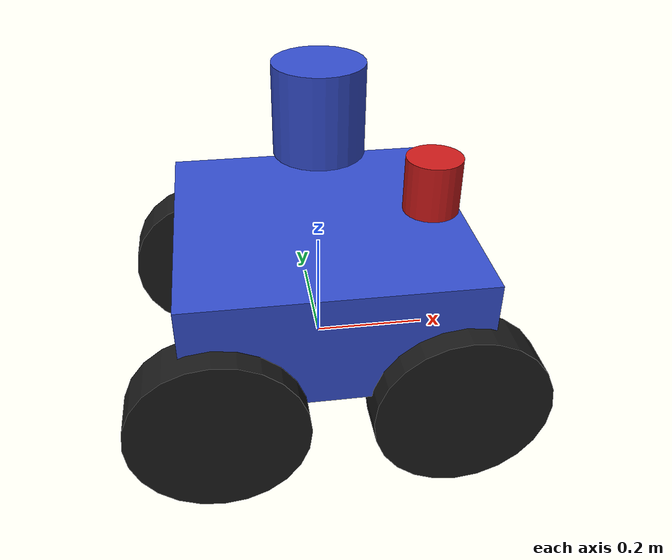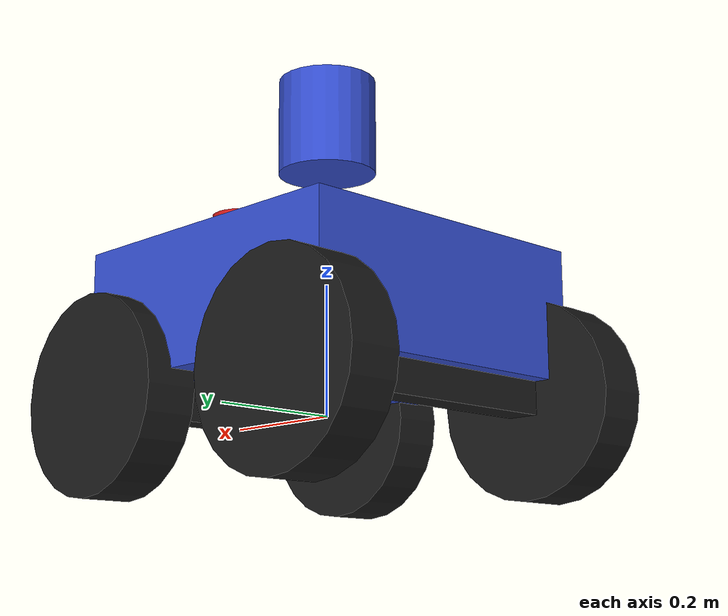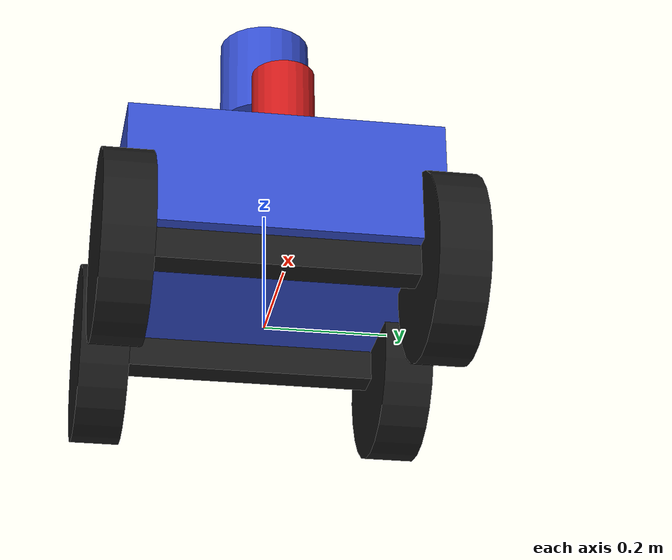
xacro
<?xml version="1.0"?>
<robot xmlns:xacro="http://www.ros.org/wiki/xacro" name="diy_ackermann">

  <!-- PARAMETERS - Easily modifiable values -->

  <!-- Robot dimensions -->
  <xacro:property name="chassis_length" value="0.5"/>
  <xacro:property name="chassis_width" value="0.5"/>
  <xacro:property name="chassis_height" value="0.2"/>
  <xacro:property name="chassis_mass" value="20.0"/>

  <!-- Wheel properties -->
  <xacro:property name="wheel_radius" value="0.15"/>
  <xacro:property name="wheel_width" value="0.08"/>
  <xacro:property name="wheel_mass" value="1.5"/>

  <!-- Axle dimensions -->
  <xacro:property name="wheelbase" value="0.4"/>  <!-- Distance between front and rear axles -->
  <xacro:property name="track_width" value="0.5"/> <!-- Distance between left and right wheels -->

  <!-- Steering properties -->
  <xacro:property name="max_steering_angle" value="0.5236"/>  <!-- 30 degrees in radians -->

  <!-- Sensor properties -->
  <xacro:property name="lidar_size" value="0.1"/>
  <xacro:property name="lidar_mass" value="0.5"/>

  <!-- Color properties -->
  <xacro:property name="chassis_color" value="0.2 0.3 0.8 1.0"/>
  <xacro:property name="wheel_color" value="0.1 0.1 0.1 1.0"/>

  <!-- MATERIAL DEFINITIONS -->

  <material name="blue">
    <color rgba="${chassis_color}"/>
  </material>

  <material name="black">
    <color rgba="${wheel_color}"/>
  </material>

  <material name="red">
    <color rgba="0.8 0.1 0.1 1.0"/>
  </material>

  <!-- MACROS - Reusable components -->

  <!-- Inertia macro for box -->
  <xacro:macro name="box_inertia" params="mass length width height">
    <inertial>
      <mass value="${mass}"/>
      <inertia ixx="${(1/12) * mass * (width*width + height*height)}" ixy="0.0" ixz="0.0"
               iyy="${(1/12) * mass * (length*length + height*height)}" iyz="0.0"
               izz="${(1/12) * mass * (length*length + width*width)}"/>
    </inertial>
  </xacro:macro>

  <!-- Inertia macro for cylinder -->
  <xacro:macro name="cylinder_inertia" params="mass radius height">
    <inertial>
      <mass value="${mass}"/>
      <inertia ixx="${(1/12) * mass * (3*radius*radius + height*height)}" ixy="0.0" ixz="0.0"
               iyy="${(1/12) * mass * (3*radius*radius + height*height)}" iyz="0.0"
               izz="${(1/2) * mass * radius * radius}"/>
    </inertial>
  </xacro:macro>

  <!-- Wheel macro - Creates a wheel with all necessary properties -->
  <xacro:macro name="wheel" params="prefix suffix reflect_y *origin">
    <link name="${prefix}_${suffix}_wheel">
      <visual>
        <origin xyz="0 0 0" rpy="${pi/2} 0 0"/>
        <geometry>
          <cylinder radius="${wheel_radius}" length="${wheel_width}"/>
        </geometry>
        <material name="black"/>
      </visual>

      <collision>
        <origin xyz="0 0 0" rpy="${pi/2} 0 0"/>
        <geometry>
          <cylinder radius="${wheel_radius}" length="${wheel_width}"/>
        </geometry>
      </collision>

      <xacro:cylinder_inertia mass="${wheel_mass}" radius="${wheel_radius}" height="${wheel_width}"/>
    </link>

    <joint name="${prefix}_${suffix}_wheel_joint" type="continuous">
      <xacro:insert_block name="origin"/>
      <parent link="${prefix}_axle"/>
      <child link="${prefix}_${suffix}_wheel"/>
      <axis xyz="0 1 0"/>
    </joint>
  </xacro:macro>

  <!-- BASE LINK - Robot's reference point -->

  <link name="base_link"/>

  <!-- CHASSIS - Main body of the robot -->

  <link name="chassis">
    <visual>
      <origin xyz="0 0 0" rpy="0 0 0"/>
      <geometry>
        <box size="${chassis_length} ${chassis_width} ${chassis_height}"/>
      </geometry>
      <material name="blue"/>
    </visual>

    <collision>
      <origin xyz="0 0 0" rpy="0 0 0"/>
      <geometry>
        <box size="${chassis_length} ${chassis_width} ${chassis_height}"/>
      </geometry>
    </collision>

    <xacro:box_inertia mass="${chassis_mass}"
                       length="${chassis_length}"
                       width="${chassis_width}"
                       height="${chassis_height}"/>
  </link>

  <joint name="base_link_joint" type="fixed">
    <origin xyz="0 0 ${wheel_radius}" rpy="0 0 0"/>
    <parent link="base_link"/>
    <child link="chassis"/>
  </joint>

  <!-- REAR AXLE (Fixed wheels) -->

  <link name="rear_axle">
    <visual>
      <geometry>
        <box size="0.05 ${track_width - wheel_width} 0.05"/>
      </geometry>
      <material name="black"/>
    </visual>

    <collision>
      <geometry>
        <box size="0.05 ${track_width - wheel_width} 0.05"/>
      </geometry>
    </collision>

    <xacro:box_inertia mass="1.0" length="0.05" width="${track_width - wheel_width}" height="0.05"/>
  </link>

  <joint name="rear_axle_joint" type="fixed">
    <origin xyz="${-wheelbase/2} 0 ${-chassis_height/2 - 0.025}" rpy="0 0 0"/>
    <parent link="chassis"/>
    <child link="rear_axle"/>
  </joint>

  <!-- Rear wheels -->
  <xacro:wheel prefix="rear" suffix="left" reflect_y="1">
    <origin xyz="0 ${track_width/2} 0" rpy="0 0 0"/>
  </xacro:wheel>

  <xacro:wheel prefix="rear" suffix="right" reflect_y="-1">
    <origin xyz="0 ${-track_width/2} 0" rpy="0 0 0"/>
  </xacro:wheel>

  <!-- FRONT AXLE (Steerable wheels) -->

  <link name="front_axle">
    <visual>
      <geometry>
        <box size="0.05 ${track_width - wheel_width} 0.05"/>
      </geometry>
      <material name="black"/>
    </visual>

    <collision>
      <geometry>
        <box size="0.05 ${track_width - wheel_width} 0.05"/>
      </geometry>
    </collision>

    <xacro:box_inertia mass="1.0" length="0.05" width="${track_width - wheel_width}" height="0.05"/>
  </link>

  <joint name="front_axle_joint" type="fixed">
    <origin xyz="${wheelbase/2} 0 ${-chassis_height/2 - 0.025}" rpy="0 0 0"/>
    <parent link="chassis"/>
    <child link="front_axle"/>
  </joint>

  <!-- Front left steering -->
  <link name="front_left_steering_link">
    <visual>
      <geometry>
        <cylinder radius="0.02" length="0.05"/>
      </geometry>
      <material name="black"/>
    </visual>

    <collision>
      <geometry>
        <cylinder radius="0.02" length="0.05"/>
      </geometry>
    </collision>

    <xacro:cylinder_inertia mass="0.1" radius="0.02" height="0.05"/>
  </link>

  <joint name="front_left_steering_joint" type="revolute">
    <origin xyz="0 ${track_width/2} 0" rpy="0 0 0"/>
    <parent link="front_axle"/>
    <child link="front_left_steering_link"/>
    <axis xyz="0 0 1"/>
    <limit lower="${-max_steering_angle}" upper="${max_steering_angle}" effort="100" velocity="10"/>
  </joint>

  <!-- Front left wheel -->
  <link name="front_left_wheel">
    <visual>
      <origin xyz="0 0 0" rpy="${pi/2} 0 0"/>
      <geometry>
        <cylinder radius="${wheel_radius}" length="${wheel_width}"/>
      </geometry>
      <material name="black"/>
    </visual>

    <collision>
      <origin xyz="0 0 0" rpy="${pi/2} 0 0"/>
      <geometry>
        <cylinder radius="${wheel_radius}" length="${wheel_width}"/>
      </geometry>
    </collision>

    <xacro:cylinder_inertia mass="${wheel_mass}" radius="${wheel_radius}" height="${wheel_width}"/>
  </link>

  <joint name="front_left_wheel_joint" type="continuous">
    <origin xyz="0 0 0" rpy="0 0 0"/>
    <parent link="front_left_steering_link"/>
    <child link="front_left_wheel"/>
    <axis xyz="0 1 0"/>
  </joint>

  <!-- Front right steering -->
  <link name="front_right_steering_link">
    <visual>
      <geometry>
        <cylinder radius="0.02" length="0.05"/>
      </geometry>
      <material name="black"/>
    </visual>

    <collision>
      <geometry>
        <cylinder radius="0.02" length="0.05"/>
      </geometry>
    </collision>

    <xacro:cylinder_inertia mass="0.1" radius="0.02" height="0.05"/>
  </link>

  <joint name="front_right_steering_joint" type="revolute">
    <origin xyz="0 ${-track_width/2} 0" rpy="0 0 0"/>
    <parent link="front_axle"/>
    <child link="front_right_steering_link"/>
    <axis xyz="0 0 1"/>
    <limit lower="${-max_steering_angle}" upper="${max_steering_angle}" effort="100" velocity="10"/>
  </joint>

  <!-- Front right wheel -->
  <link name="front_right_wheel">
    <visual>
      <origin xyz="0 0 0" rpy="${pi/2} 0 0"/>
      <geometry>
        <cylinder radius="${wheel_radius}" length="${wheel_width}"/>
      </geometry>
      <material name="black"/>
    </visual>

    <collision>
      <origin xyz="0 0 0" rpy="${pi/2} 0 0"/>
      <geometry>
        <cylinder radius="${wheel_radius}" length="${wheel_width}"/>
      </geometry>
    </collision>

    <xacro:cylinder_inertia mass="${wheel_mass}" radius="${wheel_radius}" height="${wheel_width}"/>
  </link>

  <joint name="front_right_wheel_joint" type="continuous">
    <origin xyz="0 0 0" rpy="0 0 0"/>
    <parent link="front_right_steering_link"/>
    <child link="front_right_wheel"/>
    <axis xyz="0 1 0"/>
  </joint>

  <!-- SENSORES -->

  <!-- LiDAR 2D - Explicado en clase -->
  <link name="lidar_link">
    <visual>
      <origin xyz="0 0 0" rpy="0 0 0"/>
      <geometry>
        <cylinder radius="${lidar_size/2}" length="${lidar_size}"/>
      </geometry>
      <material name="red"/>
    </visual>

    <collision>
      <origin xyz="0 0 0" rpy="0 0 0"/>
      <geometry>
        <cylinder radius="${lidar_size/2}" length="${lidar_size}"/>
      </geometry>
    </collision>

    <xacro:cylinder_inertia mass="${lidar_mass}" radius="${lidar_size/2}" height="${lidar_size}"/>
  </link>

  <joint name="lidar_joint" type="fixed">
    <origin xyz="${chassis_length/2 - lidar_size/2} 0 ${chassis_height/2 + lidar_size/2}" rpy="0 0 0"/>
    <parent link="chassis"/>
    <child link="lidar_link"/>
  </joint>

  <!-- LiDAR 3D - Tarea -->
  <!-- 1. Propiedades del sensor -->
  <xacro:property name="lidar3d_size" value="0.15"/>
  <xacro:property name="lidar3d_mass" value="0.8"/>

  <!-- 2. Link del LiDAR 3D -->
  <link name="lidar_3d_link">
    <visual>
      <origin xyz="0 0 0" rpy="0 0 0"/>
      <geometry>
        <cylinder radius="${lidar3d_size/2}" length="${lidar3d_size}"/>
      </geometry>
      <material name="blue"/>
    </visual>

    <collision>
      <origin xyz="0 0 0" rpy="0 0 0"/>
      <geometry>
        <cylinder radius="${lidar3d_size/2}" length="${lidar3d_size}"/>
      </geometry>
    </collision>

    <xacro:cylinder_inertia mass="${lidar3d_mass}"
                            radius="${lidar3d_size/2}"
                            height="${lidar3d_size}"/>
  </link>

  <joint name="lidar_3d_joint" type="fixed">
    <origin xyz="0 0 ${chassis_height/2 + lidar3d_size + 0.05}" rpy="0 0 0"/>
    <parent link="chassis"/>
    <child link="lidar_3d_link"/>
  </joint>

  <!-- GAZEBO PLUGINS -->
  <!-- LiDAR 3D Plugin -->
  <gazebo reference="lidar_3d_link">
  <sensor name="lidar_3d" type="gpu_lidar">  <!-- Cambiar a type="lidar" si no tienes GPU -->
    <topic>lidar_3d</topic>
    <gz_frame_id>lidar_3d_link</gz_frame_id>
      <update_rate>10</update_rate>
    <lidar>
      <scan>
        <horizontal>
          <samples>1800</samples>
          <resolution>1</resolution>
          <min_angle>-3.14159</min_angle>
          <max_angle>3.14159</max_angle>
        </horizontal>
        <vertical>
          <samples>16</samples>
          <resolution>1</resolution>
          <min_angle>-0.2617</min_angle>
          <max_angle>0.2617</max_angle>
        </vertical>
      </scan>
      <range>
        <min>0.5</min>
        <max>30.0</max>
        <resolution>0.01</resolution>
      </range>
      <noise>
        <type>gaussian</type>
        <mean>0.0</mean>
        <stddev>0.02</stddev>
      </noise>
    </lidar>
    <always_on>1</always_on>
    <visualize>true</visualize>
  </sensor>
  </gazebo>

  <!-- Ackermann Drive Plugin -->
  <gazebo>
    <plugin filename="libignition-gazebo-ackermann-steering-system.so"
            name="ignition::gazebo::systems::AckermannSteering">
      <left_joint>front_left_wheel_joint</left_joint>
      <right_joint>front_right_wheel_joint</right_joint>
      <left_steering_joint>front_left_steering_joint</left_steering_joint>
      <right_steering_joint>front_right_steering_joint</right_steering_joint>
      <kingpin_width>${track_width}</kingpin_width>
      <wheelbase>${wheelbase}</wheelbase>
      <steering_limit>${max_steering_angle}</steering_limit>
      <wheel_separation>${track_width}</wheel_separation>
      <wheel_radius>${wheel_radius}</wheel_radius>
      <min_velocity>-10</min_velocity>
      <max_velocity>10</max_velocity>
      <min_acceleration>-5</min_acceleration>
      <max_acceleration>5</max_acceleration>
      <topic>cmd_vel</topic>
      <odom_topic>odom</odom_topic>
      <odom_publish_frequency>50</odom_publish_frequency>
    </plugin>
  </gazebo>

  <!-- Joint State Publisher Plugin -->
  <gazebo>
    <plugin filename="libignition-gazebo-joint-state-publisher-system.so"
            name="ignition::gazebo::systems::JointStatePublisher">
      <topic>joint_states</topic>
    </plugin>
  </gazebo>

  <!-- Pose Publisher Plugin -->
  <gazebo>
    <plugin filename="libignition-gazebo-pose-publisher-system.so"
            name="ignition::gazebo::systems::PosePublisher">
      <publish_link_pose>true</publish_link_pose>
      <publish_collision_pose>false</publish_collision_pose>
      <publish_visual_pose>false</publish_visual_pose>
      <publish_nested_model_pose>false</publish_nested_model_pose>
      <update_frequency>50</update_frequency>
    </plugin>
  </gazebo>

  <!-- LiDAR 2D Sensor Plugin -->
  <gazebo reference="lidar_link">
    <sensor name="lidar" type="gpu_lidar">
      <topic>scan</topic>
      <update_rate>10</update_rate>
      <lidar>
        <scan>
          <horizontal>
            <samples>360</samples>
            <resolution>1</resolution>
            <min_angle>-3.14159</min_angle>
            <max_angle>3.14159</max_angle>
          </horizontal>
        </scan>
        <range>
          <min>0.2</min>
          <max>10.0</max>
          <resolution>0.01</resolution>
        </range>
        <noise>
          <type>gaussian</type>
          <mean>0.0</mean>
          <stddev>0.01</stddev>
        </noise>
      </lidar>
      <always_on>1</always_on>
      <visualize>true</visualize>
      <ignition_frame_id>lidar_link</ignition_frame_id>
    </sensor>
  </gazebo>

  <!-- Material colors for Gazebo -->
  <gazebo reference="chassis">
    <material>Gazebo/Blue</material>
  </gazebo>

  <gazebo reference="rear_left_wheel">
    <material>Gazebo/Black</material>
  </gazebo>

  <gazebo reference="rear_right_wheel">
    <material>Gazebo/Black</material>
  </gazebo>

  <gazebo reference="front_left_wheel">
    <material>Gazebo/Black</material>
  </gazebo>

  <gazebo reference="front_right_wheel">
    <material>Gazebo/Black</material>
  </gazebo>

  <gazebo reference="lidar_link">
    <material>Gazebo/Red</material>
  </gazebo>

  <gazebo reference="lidar_link_gazebo">
    <material>Gazebo/Blue</material>
  </gazebo>

</robot>
